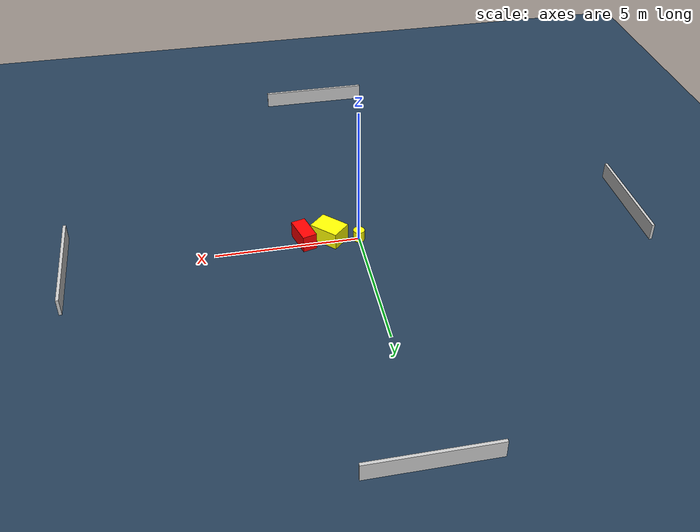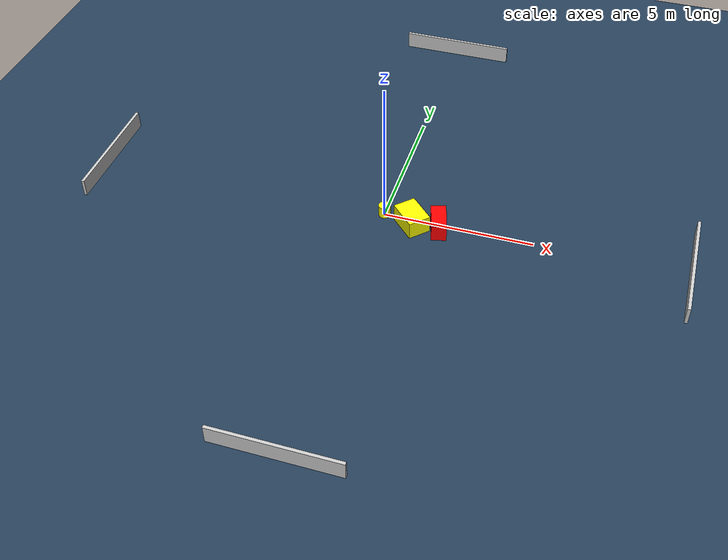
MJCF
<?xml version="1.0" ?>
<mujoco model="generated_environment">
  <option timestep="0.01" integrator="RK4" cone="elliptic"/>
  <default>
    <geom density="1"/>
  </default>
  <asset>
    <texture builtin="gradient" height="3072" name="skybox" rgb1="0.3 0.5 0.7" rgb2="0 0 0" type="skybox" width="512"/>
    <texture builtin="checker" height="300" name="groundplane" rgb1="0.2 0.3 0.4" rgb2="0.1 0.2 0.3" type="2d" width="300"/>
    <material name="groundplane" reflectance="0.2" texrepeat="5 5" texture="groundplane"/>
  </asset>
  <worldbody>
    <light dir="0 0 -1" directional="true" pos="0 0 1.5"/>
    <geom condim="3" friction="0.5 0.005 0.001" material="groundplane" name="floor" pos="0 0 0" size="0 0 0.05" type="plane"/>
    <body name="walls">
      <geom name="wall_1" condim="4" pos="-10.0 0.0 0.3" rgba="0.800000011920929 0.800000011920929 0.800000011920929 1.0" size="0.05 2.0 0.3" type="box"/>
      <geom name="wall_2" condim="4" pos="10.0 0.0 0.3" rgba="0.800000011920929 0.800000011920929 0.800000011920929 1.0" size="0.05 2.0 0.3" type="box"/>
      <geom name="wall_3" condim="4" pos="0.0 -10.0 0.3" rgba="0.800000011920929 0.800000011920929 0.800000011920929 1.0" size="2.0 0.05 0.3" type="box"/>
      <geom name="wall_4" condim="4" pos="0.0 10.0 0.3" rgba="0.800000011920929 0.800000011920929 0.800000011920929 1.0" size="2.0 0.05 0.3" type="box"/>
    </body>
    <body name="robot">
      <joint name="joint_x" type="slide" pos="0 0 0" axis="1 0 0"/>
      <joint name="joint_y" type="slide" pos="0 0 0" axis="0 1 0"/>
      <geom name="robot" type="cylinder" pos="0.0 0.0 0.2" size="0.2 0.2 0.0" mass="5.0" friction="1.0 0.005 0.0001" condim="4" rgba="1.0 1.0 0.0 1.0"/>
    </body>
    <body name="obstacle_1_movable">
      <geom name="obstacle_1_movable" condim="4" pos="1.0003242768802478 -0.233887509255556 0.3" euler="0 0 44.88915274034592" friction="0.0 0.005 0.001" rgba="1.0 1.0 0.0 1.0" size="0.3815439063674849 0.5308455277747764 0.3" type="box" mass="0.1"/>
      <joint type="free"/>
    </body>
    <body name="obstacle_2_static">
      <geom name="obstacle_2_static" condim="4" pos="1.8968874370650257 -0.20862283017939398 0.3" euler="0 0 105.61809972263643" friction="0.0 0.005 0.001" rgba="1.0 0.0 0.0 1.0" size="0.5060944984538511 0.2516282339044474 0.3" type="box"/>
    </body>
  </worldbody>
  <actuator>
    <motor name="actuator_x" joint="joint_x" gear="1" ctrlrange="-1 1"/>
    <motor name="actuator_y" joint="joint_y" gear="1" ctrlrange="-1 1"/>
  </actuator>
</mujoco>
